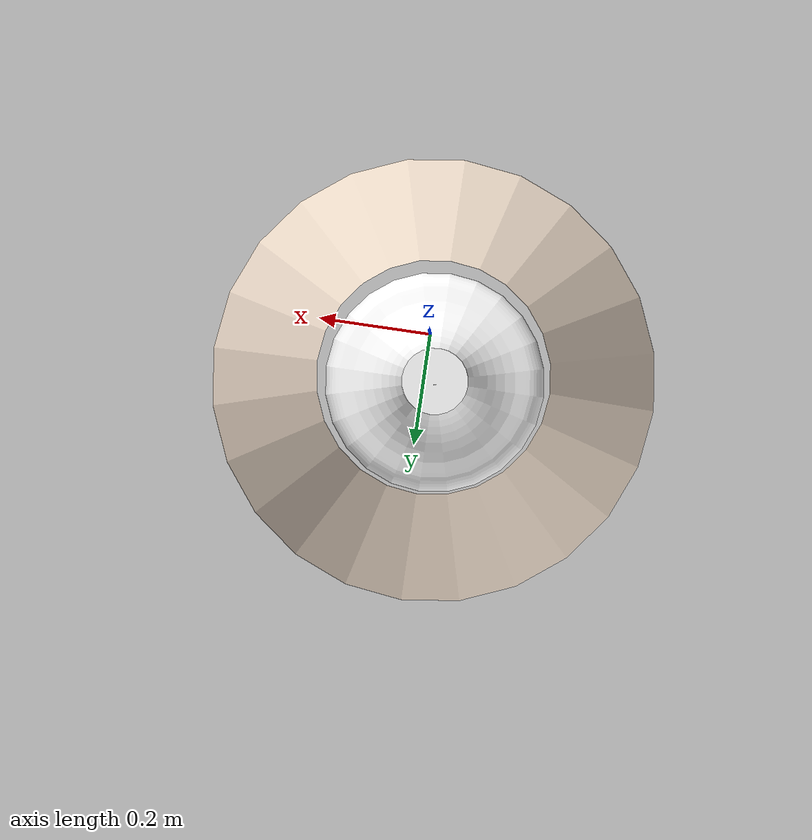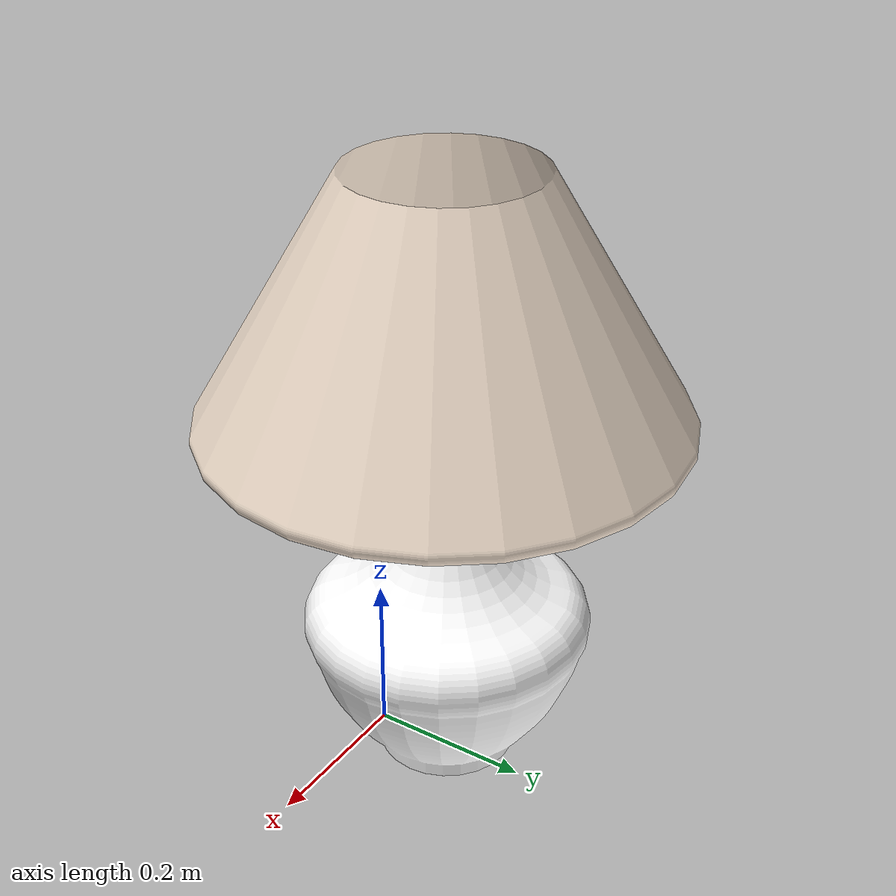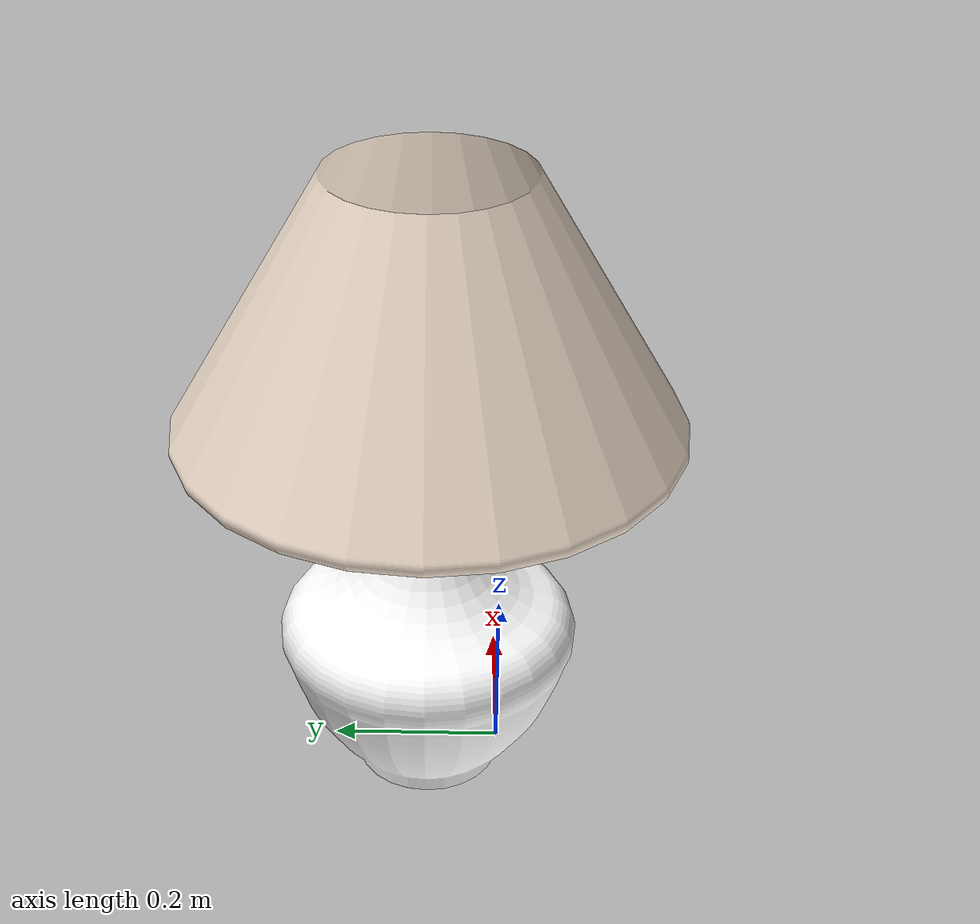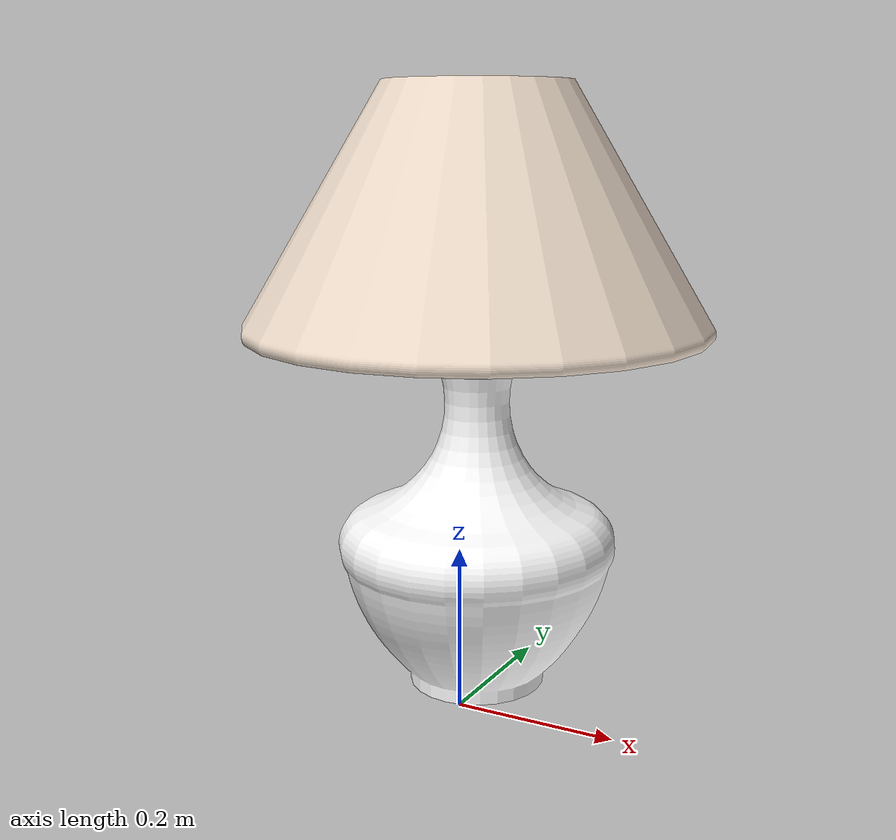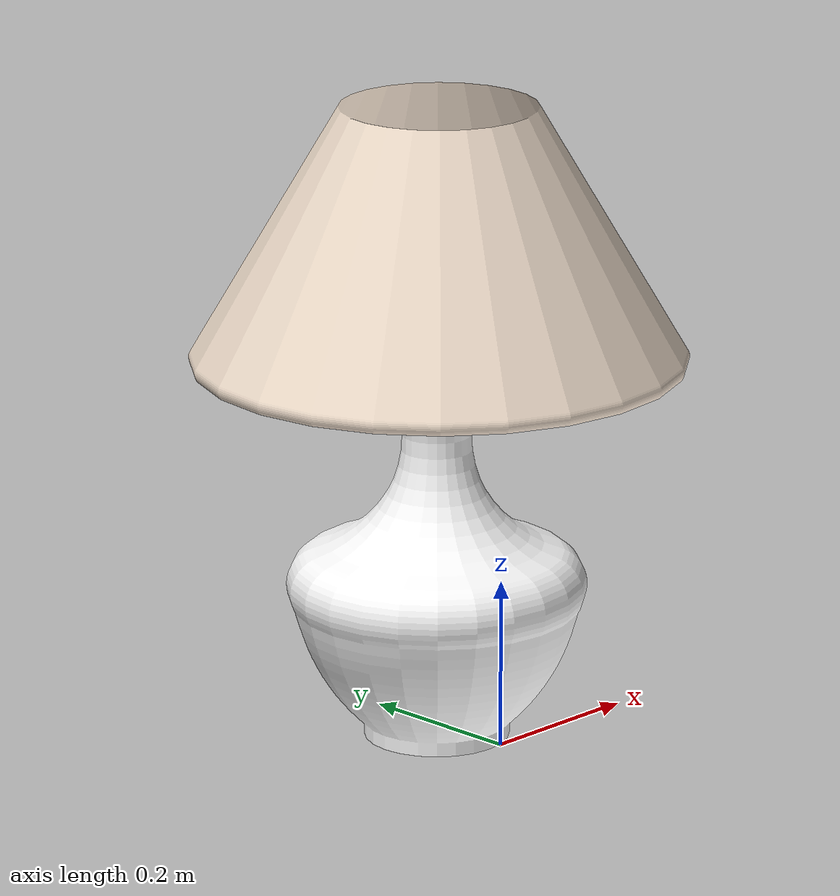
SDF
<?xml version='1.0'?>
<sdf version='1.6'>
  <model name='lamp_table_large'>
    <link name='link_20'>
      <pose frame=''>-0.009128 0.000859 0 0 -0 0</pose>
       <visual name='visual'>
        <pose frame=''>0 0 0 0 -0 0</pose>
        <geometry>
          <mesh>
            <uri>model://lamp_table_large/meshes/lamp_base.dae</uri>
            <scale>1 1 1</scale>
          </mesh>
        </geometry>
        <material>
          <lighting>1</lighting>
              <ambient>1 1 1 1</ambient>
          <diffuse>1 1 1 1</diffuse>
          <specular>0.01 0.01 0.01 1</specular>
          <emissive>0 0 0 1</emissive>
        </material>
        <cast_shadows>1</cast_shadows>
        <transparency>0</transparency>
      </visual>
      <collision name='collision'>
        <laser_retro>0</laser_retro>
        <max_contacts>10</max_contacts>
        <pose frame=''>0 0 0 0 -0 0</pose>
        <geometry>
          <mesh>
            <uri>model://lamp_table_large/meshes/lamp_base.dae</uri>
            <scale>1 1 1</scale>
          </mesh>
        </geometry>
         </collision>
    </link>
    <link name='link_21'>
      <pose frame=''>0.009129 -0.000859 0 0 -0 0</pose>
        <visual name='visual'>
        <pose frame=''>0 0 0 0 -0 0</pose>
        <geometry>
          <mesh>
            <uri>model://lamp_table_large/meshes/lamp_head.dae</uri>
            <scale>1 1 1</scale>
          </mesh>
        </geometry>
        <material>
          <lighting>1</lighting>
          <ambient>0.9568 0.8862 0.8156 1</ambient>
          <diffuse>0.9568 0.8862 0.8156 1</diffuse>
          <specular>0.01 0.01 0.01 1</specular>
          <emissive>0 0 0 1</emissive>
        </material>
        <cast_shadows>1</cast_shadows>
        <transparency>0</transparency>
      </visual>
      <collision name='collision'>
        <laser_retro>0</laser_retro>
        <max_contacts>10</max_contacts>
        <pose frame=''>0 0 0 0 -0 0</pose>
        <geometry>
          <mesh>
            <uri>model://lamp_table_large/meshes/lamp_head.dae</uri>
            <scale>1 1 1</scale>
          </mesh>
        </geometry>
       </collision>
    </link>
    <static>1</static>
    <allow_auto_disable>1</allow_auto_disable>
  </model>
</sdf>
